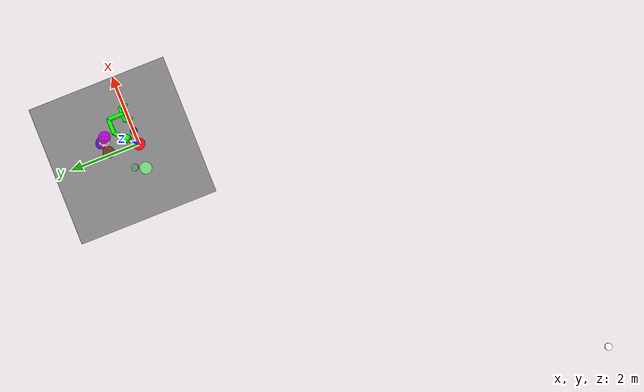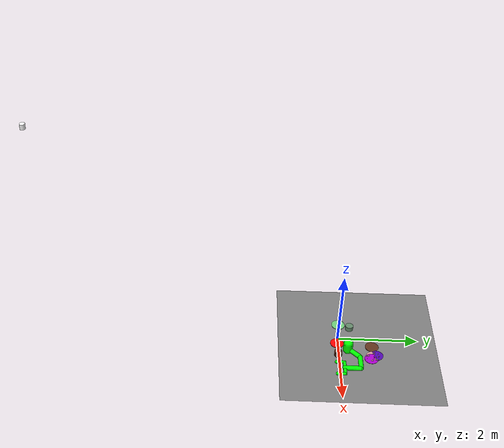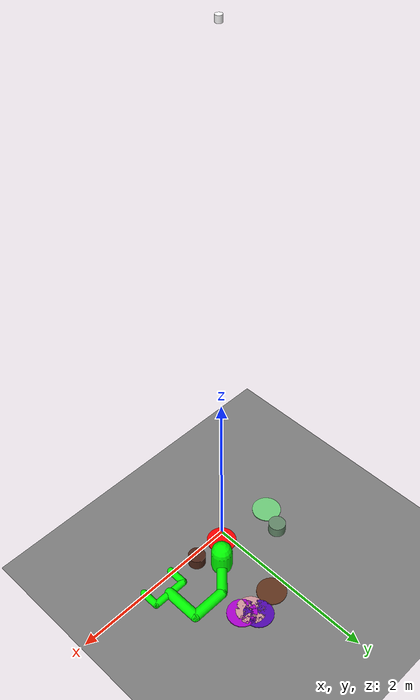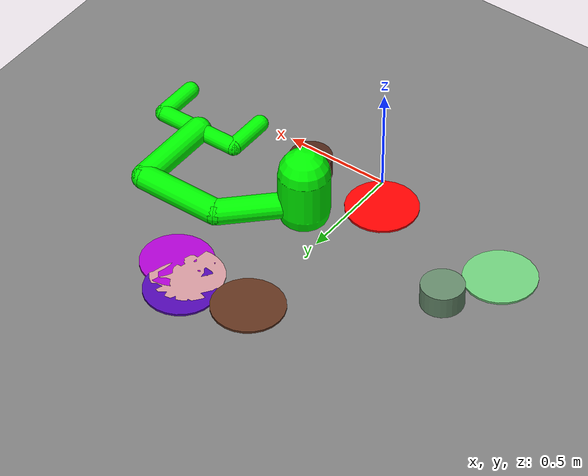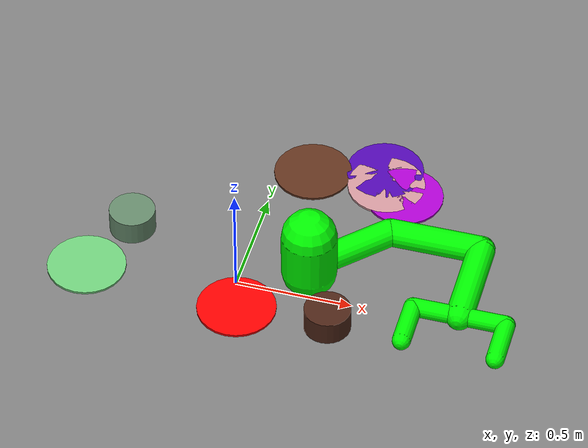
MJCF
<mujoco model="arm3d">
    <compiler angle="radian" coordinate="local" inertiafromgeom="true" />
    <option gravity="0 0 0" integrator="Euler" iterations="20" timestep="0.01" />

    <default>
        <joint armature="0.04" damping="1" limited="true" />
        <geom conaffinity="1" condim="1" contype="1" density="300" friction=".8 .1 .1" margin="0.002" />
    </default>

    <worldbody>
        <light diffuse=".5 .5 .5" dir="0 0 -1" pos="0 0 3" />
        <geom conaffinity="1" contype="1" pos="0 0.5 -0.15" size="2 2 0.1" type="plane" />

        <body name="palm" pos="0.25 0.25 0">
            <geom fromto="0 0 -0.1 0 0 0.1" rgba="0. 1. 0. 1" size="0.12" type="capsule" />
            <body axisangle="0 0 1 0.785" name="proximal_1" pos="0 0 -0.075">
                <joint axis="0 0 1" damping="1.0" name="proximal_j_1" pos="0 0 0" range="-2.5 2.5" type="hinge" />
                <geom conaffinity="1" contype="1" fromto="0 0 0 0.4 0 0" rgba="0. 1. 0. 1" size="0.06" type="capsule" />
                <body axisangle="0 0 1 -0.785" name="distal_1" pos="0.4 0 0">
                    <joint axis="0 0 1" damping="1.0" name="distal_j_1" pos="0 0 0" range="-2.3213 2.3" type="hinge" />
                    <geom conaffinity="1" contype="1" fromto="0 0 0 0.4 0 0" rgba="0. 1. 0. 1" size="0.06" type="capsule" />
                    <body axisangle="0 0 1 -1.57" name="distal_2" pos="0.4 0 0">
                        <joint axis="0 0 1" damping="1.0" name="distal_j_2" pos="0 0 0" range="-2.3213 2.3" type="hinge" />
                        <geom conaffinity="1" contype="1" fromto="0 0 0 0.4 0 0" rgba="0. 1. 0. 1" size="0.06" type="capsule" />
                        <body name="distal_4" pos="0.4 0 0">
                            <site name="tip arml" pos="0.1 -0.2 0" size="0.01" />
                            <site name="tip armr" pos="0.1 0.2 0" size="0.01" />

                            <geom conaffinity="1" contype="1" fromto="0 -0.2 0 0 0.2 0" rgba="0. 1. 0. 1" size="0.04" type="capsule" />
                            <geom conaffinity="1" contype="1" fromto="0 -0.2 0 0.2 -0.2 0" rgba="0. 1. 0. 1" size="0.04" type="capsule" />
                            <geom conaffinity="1" contype="1" fromto="0 0.2 0 0.2 0.2 0" rgba="0. 1. 0. 1" size="0.04" type="capsule" />
                        </body>
                    </body>
                </body>
            </body>
        </body>

        <body name="object" pos="-10 -10 -0.1">

            <geom conaffinity="1" contype="1" density="0.00001" rgba="1. 1. 1. 1" size="0.1 0.1 0.1" type="cylinder" />
            <joint axis="0 1 0" damping="0.5" name="obj_slidey" pos="0.025 0.025 0.025" range="-10.3213 10.3" type="slide" />
            <joint axis="1 0 0" damping="0.5" name="obj_slidex" pos="0.025 0.025 0.025" range="-10.3213 10.3" type="slide" />
        </body>

        <body name="goal" pos="0 0 -0.145">

            <geom conaffinity="0" contype="0" density="0.00001" rgba="1. 0. 0. 1" size="0.17 0.005 0.2" type="cylinder" />
            <joint axis="0 1 0" damping="0.5" name="goal_slidey" pos="0 0 0" range="-10.3213 10.3" type="slide" />
            <joint axis="1 0 0" damping="0.5" name="goal_slidex" pos="0 0 0" range="-10.3213 10.3" type="slide" />
        </body>

    <geom conaffinity="0" contype="0" density="0.00001" name="object0" pos="0.521823 0.826919 -0.145" rgba="0.685137 0.004640 0.817293 1" size="0.17 0.005 0.2" type="cylinder" /><geom conaffinity="0" contype="0" density="0.00001" name="object1" pos="0.429200 0.872272 -0.145" rgba="0.823853 0.597455 0.617989 1" size="0.17 0.005 0.2" type="cylinder" /><geom conaffinity="0" contype="0" density="0.00001" name="object2" pos="-0.685235 0.069401 -0.145" rgba="0.437608 0.809140 0.482831 1" size="0.17 0.005 0.2" type="cylinder" /><geom conaffinity="0" contype="0" density="0.00001" name="object3" pos="0.097923 0.870665 -0.145" rgba="0.383334 0.203766 0.119841 1" size="0.17 0.005 0.2" type="cylinder" /><geom conaffinity="0" contype="0" density="0.00001" name="object4" pos="0.401239 0.959093 -0.145" rgba="0.320851 0.028213 0.696779 1" size="0.17 0.005 0.2" type="cylinder" />

    <geom conaffinity="0" contype="0" density="0.00001" name="object0" pos="0.396584 0.000114 -0.145" rgba="0.302333 0.146756 0.092339 1" size="0.1 0.1 0.1" type="cylinder" /><geom conaffinity="0" contype="0" density="0.00001" name="object1" pos="-0.564732 0.345561 -0.145" rgba="0.396767 0.538817 0.419195 1" size="0.1 0.1 0.1" type="cylinder" /></worldbody>

    <actuator>
        <motor ctrllimited="true" ctrlrange="-3 3" joint="proximal_j_1" />
        <motor ctrllimited="true" ctrlrange="-3 3" joint="distal_j_1" />
        <motor ctrllimited="true" ctrlrange="-3 3" joint="distal_j_2" />

    </actuator>
</mujoco>
